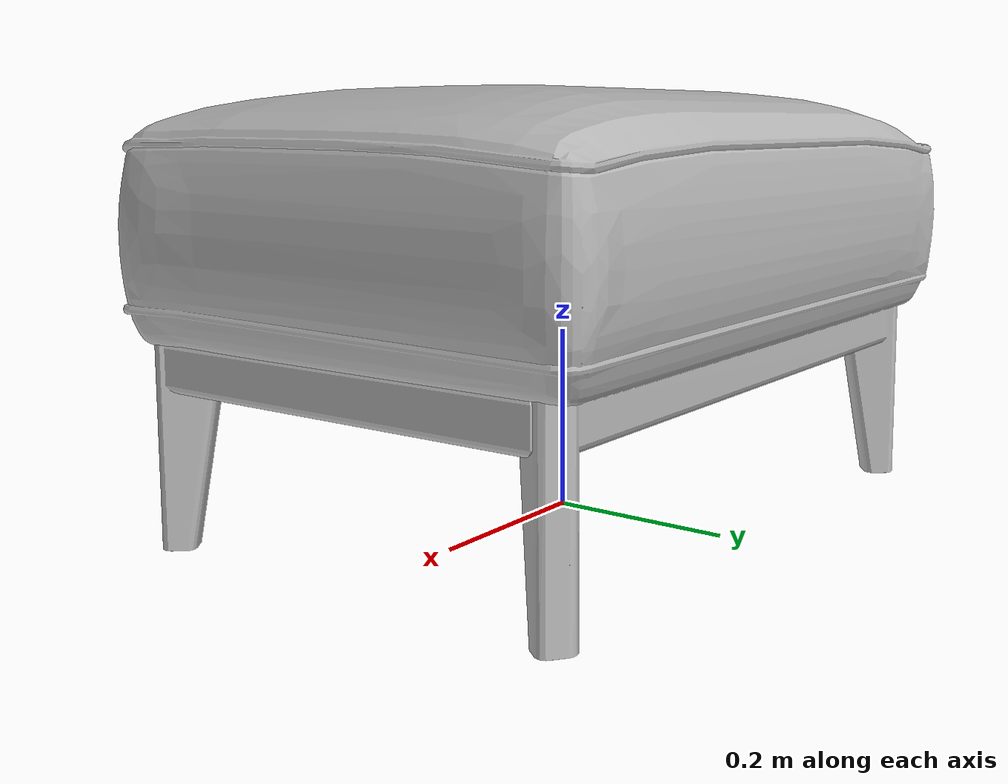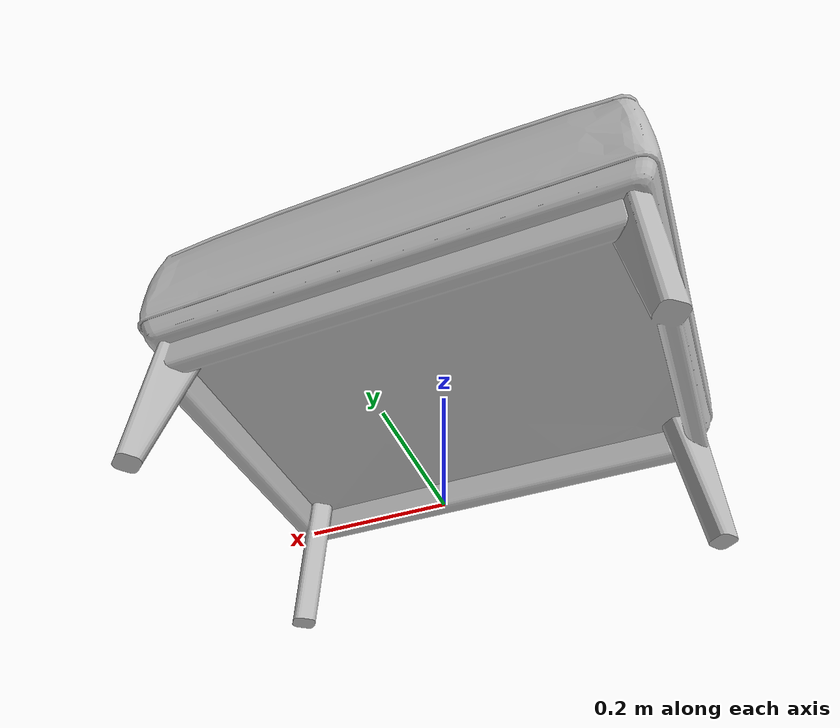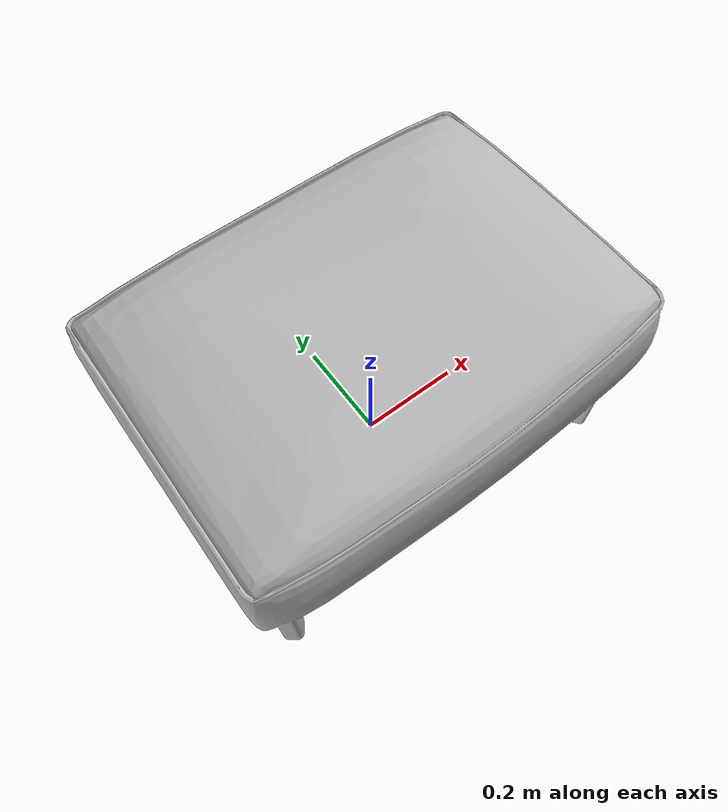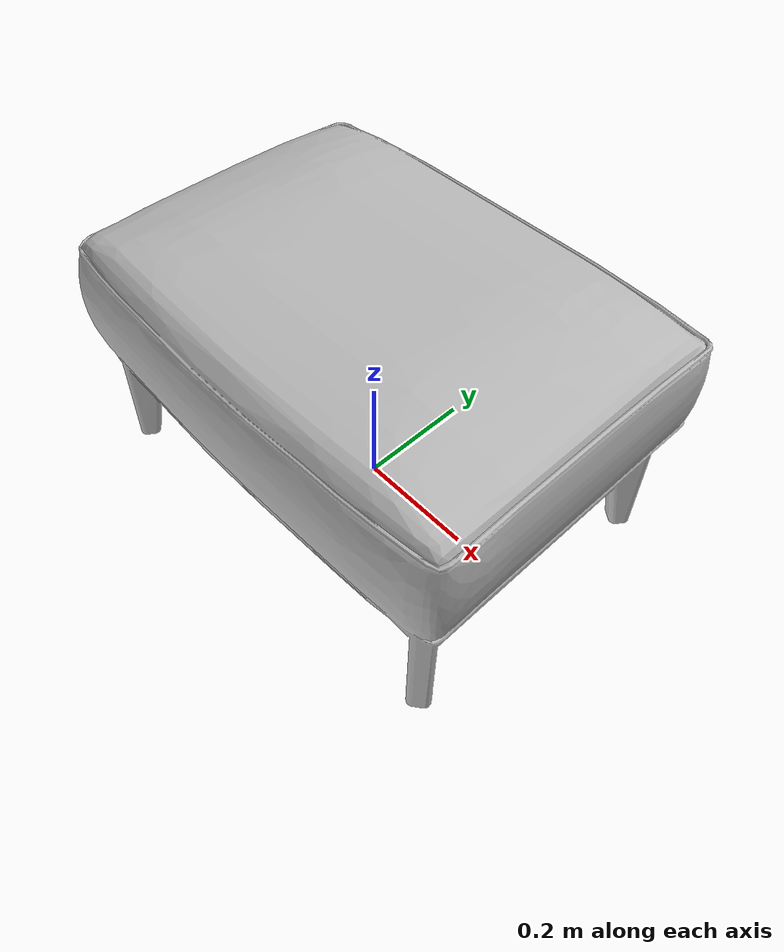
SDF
<sdf version="1.6">
	<model name="Ottomans_O7c9dadd15f42_lod0">
		<link name="main_link">
			<visual name="visual_RootNode">
				<geometry>
					<mesh>
						<uri>model://Ottomans_O7c9dadd15f42_lod0/meshes/visual_RootNode.dae</uri>
					</mesh>
				</geometry>
			</visual>
			<collision name="collision_RootNode_lod0_0">
				<geometry>
					<mesh>
						<uri>model://Ottomans_O7c9dadd15f42_lod0/meshes/collision_RootNode_lod0_0.dae</uri>
					</mesh>
				</geometry>
			</collision>
		</link>
	</model>
</sdf>
